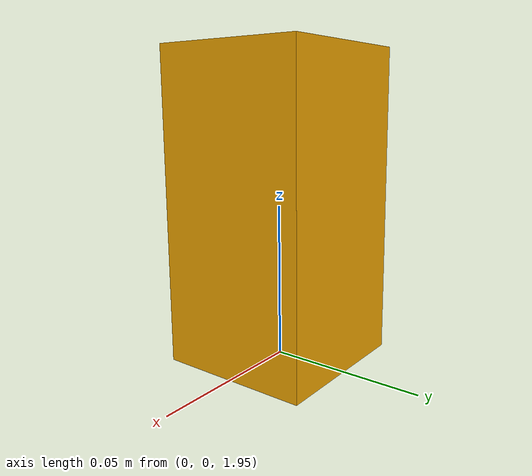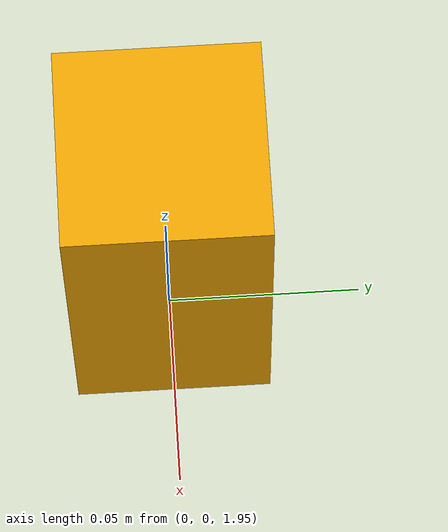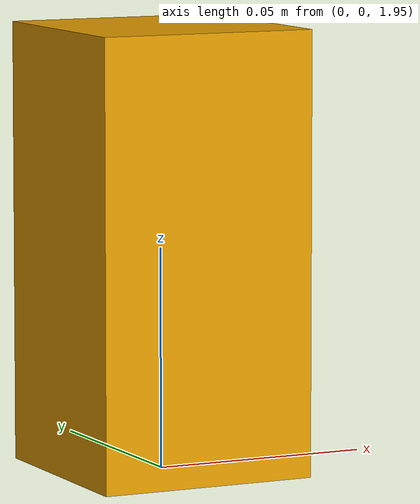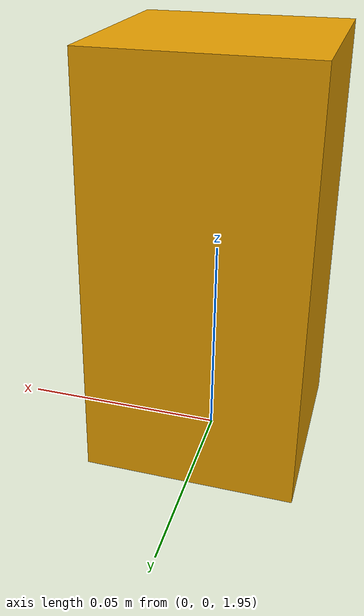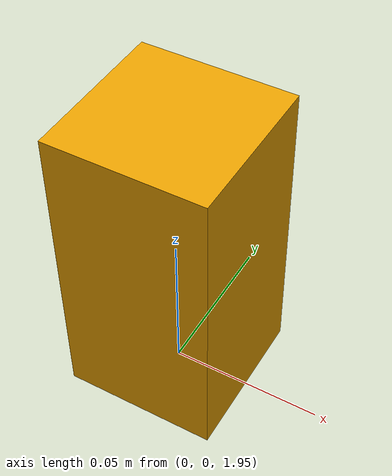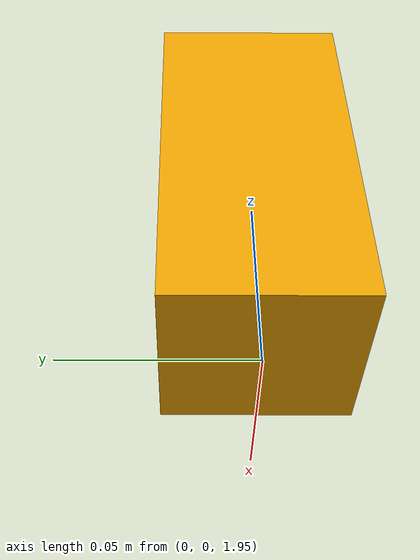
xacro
<?xml version="1.0"?>

<robot name="asus_base" xmlns:xacro="http:www.ros.org/wiki/xacro">

  <property name="M_PI" value="3.1415926535897931" />

  <!-- For ASUS Camera -->

  <link name="mount">
    <inertial>
      <mass value="1.0" />
      <origin xyz="1 0 0" />
      <inertia  ixx="1.0" ixy="0.0"  ixz="0.0"  iyy="100.0"  iyz="0.0"  izz="1.0" />
    </inertial>
    <visual>
      <origin xyz="0 0 2" rpy="0 0 0" />
      <geometry name="mount_visual">
        <box size="0.05 0.05 0.10" />
      </geometry>
    </visual>
    <collision>
      <origin xyz="1 0 0" rpy="0 0 0 " />
      <geometry name="mount_geometry">
        <box size="0.05 0.05 0.10" />
      </geometry>
    </collision>
  </link>

</robot>
